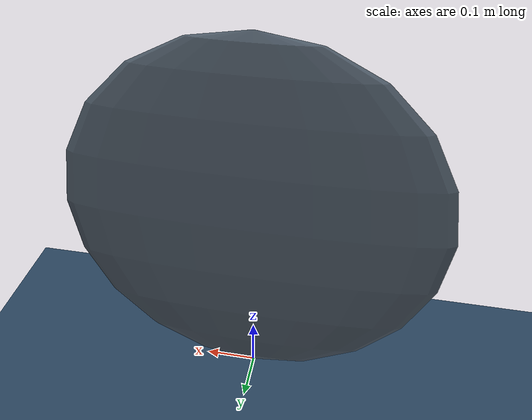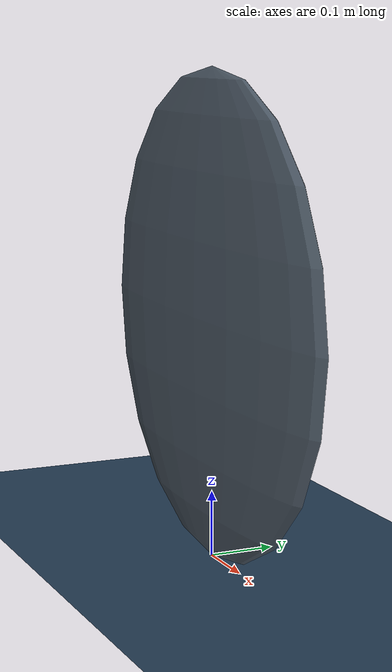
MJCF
<mujoco>
      <asset>
        <texture name="grid" type="2d" builtin="checker" rgb1=".1 .2 .3" rgb2=".2 .3 .4"
                    width="512" height="512"/>
        <texture name="grid2" type="2d" builtin="checker" rgb1=".1 .1 .1" rgb2=".5 .6 .7"
                    width="231" height="231"/>
        <material name="grid" texture="grid" texrepeat="2 2" texuniform="true" reflectance=".2"/>
        <material name="grid2" texture="grid2" texrepeat="2 2" texuniform="true"/>
        <material name="frame" rgba="0.8 0.6 0.4 1"/>
    </asset>

    <worldbody>
        <light pos=".3 -.3 .8" diffuse="1 1 1" specular=".3 .3 .3"/>
        <geom name="floor" type="plane" size="3 3 .01" pos="-0.025 -0.295  0" material="grid"/>
        <camera name="top" pos="-0.37 -0.78 0.49" xyaxes="0.78 -0.63 0 0.27 0.33 0.9"/>

        <body name="wheel1" >
            <freejoint/>
            <geom name="wheel" type="ellipsoid" size=".37 .03 .37" pos="0 0 .37" material="grid2"/>

        </body>

    </worldbody>
</mujoco>
